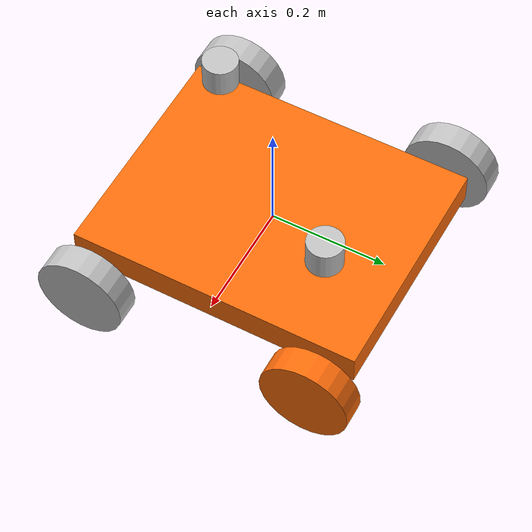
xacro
<?xml version="1.0" encoding="utf-8"?>
<robot name="ros_gazebo_control" xmlns:xacro="http://ros.org/wiki/xacro">

  <!-- 机器人基坐标系和base_link的变换 -->
  <link name="footprint"/>
  <joint name="base_joint" type="fixed">
    <parent link="footprint"/>
    <child link="base_link"/>
  </joint>

  <!-- 底盘基坐标系 -->
  <link name="base_link">
    <inertial>
    <!-- 空间坐标系，欧拉角 -->
      <origin xyz="-0.00220382717226197 -2.77555756156289E-16 -0.0265140822306779" rpy="0 0 1.5707" />
      <!-- 质量 -->
      <mass value="10.000" />
      <!-- 惯性矩阵 -->
      <inertia
        ixx="0.0572230045930851"
        ixy="-6.87004526351033E-11"
        ixz="0.000395011143970009"
        iyy="0.104579006027751"
        iyz="-1.14411298490415E-09"
        izz="0.158680615936617" />
    </inertial>
    <visual>    <!-- 可视化 -->
      <origin xyz="0 0 0" rpy="0 0 1.5707" />
      <geometry>
        <box size="0.500 0.400 0.0525"/>
      </geometry>
      <material name="orange">
        <color rgba="1.0 0.423529411765 0.0392156862745 1.0" />    <!-- 颜色设定 1代表不透明 -->
      </material>
    </visual>
    <collision>  <!-- 碰撞矩阵 -->
      <origin xyz="0 0 0" rpy="0 0 0" />
      <geometry>
        <box size="0.600 0.500 0.0525"/>
      </geometry>
    </collision>
  </link>

  <link name="laser">
    <visual>
      <origin xyz="0 0 0" />
      <geometry>
        <cylinder length="0.05" radius="0.03" />
      </geometry>
      <material name="">
        <color rgba="0.752941176470588 0.752941176470588 0.752941176470588 1" />
      </material>
    </visual>
  </link>

  <joint name="laser_joint" type="fixed">
    <parent link="base_link" />
    <child link="laser" />
    <origin rpy="0 0 0.785" xyz="0.119 0.154 0.15" />
  </joint>

  <!-- 添加第二个雷达 -->
  <link name="laser2">
    <visual>
      <origin xyz="0 0 0" />
      <geometry>
        <cylinder length="0.05" radius="0.03" />
      </geometry>
      <material name="">
        <color rgba="0.752941176470588 0.752941176470588 0.752941176470588 1" />
      </material>
    </visual>
  </link>

  <joint name="laser2_joint" type="fixed">
    <parent link="base_link" />
    <child link="laser2" />
    <origin rpy="0 0 -2.355" xyz="-0.117 -0.159 0.15" />
  </joint>

  <!-- 左前轮连接 -->
  <link name="left_front_wheel_link">
    <inertial>
      <origin xyz="-2.22044604925031E-16 5.55111512312578E-17 -0.0225" rpy="-1.5708 -0.30431 -1.5707" />
      <mass value="0.721647747903646" />    <!-- 轮子质量 -->
      <!-- 惯性矩阵 -->
      <inertia ixx="0.00123192786633422" ixy="1.89735380184963E-19" ixz="8.49404400619211E-20" iyy="0.00123192786633422" iyz="8.75533839482724E-20" izz="0.00224906487784527" />
    </inertial>
    <visual>
      <origin xyz="0 0 0" rpy="0 0 -1.5707" />
      <geometry>
        <cylinder length="0.045" radius="0.07625"/>
      </geometry>
      <material name="orange">  <!-- 颜色设定 1代表不透明 -->
        <color rgba="1.0 0.423529411765 0.0392156862745 1.0" />
      </material>
    </visual>
    <collision>
      <origin xyz="0 0 0" rpy="0 0 0" />
      <geometry>
        <cylinder length="0.045" radius="0.07625"/>
      </geometry>
    </collision>
  </link>

  <!-- 左前轮关节-->
  <joint name="left_front_wheel_joint" type="continuous">
    <origin xyz="0.25 0.20 -0.0265" rpy="-1.5708 -0.30431 -1.5707" />
    <parent link="base_link" /> <!-- 父连接点 -->
    <child link="left_front_wheel_link" />  <!-- 子连接点 -->
    <axis xyz="0 0 -1" />
  </joint>

  <!-- 右前轮连接 -->
  <link name="right_front_wheel_link">
    <inertial>
      <origin xyz="1.11022302462516E-16 1.11022302462516E-16 -0.0225" rpy="0 0 -1.5707" />
      <mass value="0.845393856790019" />
      <inertia
        ixx="0.00123192786633422"
        ixy="7.45388993583784E-20"
        ixz="1.67796661947745E-19"
        iyy="0.00123192786633422"
        iyz="-2.53495689109652E-20"
        izz="0.00224906487784527" />
    </inertial>
    <visual>
      <origin xyz="0 0 0" rpy="0 0 -1.5707" />
      <geometry>
        <cylinder length="0.045" radius="0.07625"/>
      </geometry>
      <material name="">
        <color rgba="0.752941176470588 0.752941176470588 0.752941176470588 1" />
      </material>
    </visual>
    <collision>
      <origin xyz="0 0 0" rpy="0 0 0" />
      <geometry>
        <cylinder length="0.045" radius="0.07625"/>
      </geometry>
    </collision>
  </link>

  <!-- 右前轮关节 -->
  <joint name="right_front_wheel_joint" type="continuous">
    <origin xyz="0.25 -0.20 -0.0265" rpy="-1.5708 -0.036627 -1.5707" />
    <parent link="base_link" />
    <child link="right_front_wheel_link" />
    <axis xyz="0 0 1" />
  </joint>

  <!-- 左后轮连接 -->
  <link name="left_back_wheel_link">
    <inertial>
      <origin xyz="0.000156473891360004 0.0134968603558328 -1.22002941108281E-05" rpy="0 0 -1.5707" />
      <mass value="0.845393836088844" />
      <inertia
        ixx="0.00123192786633422"
        ixy="0"
        ixz="-5.02055808133134E-20"
        iyy="0.00123192786633422"
        iyz="-1.73134637201802E-19"
        izz="0.00224906487784527" />
    </inertial>
    <visual>
      <origin xyz="0 0 0" rpy="0 0 0" />
      <geometry>
        <cylinder length="0.045" radius="0.07625"/>
      </geometry>
      <material name="">
        <color rgba="0.752941176470588 0.752941176470588 0.752941176470588 1" />
      </material>
    </visual>
    <collision>
      <origin xyz="0 0 0" rpy="0 0 -1.5707" />
      <geometry>
        <cylinder length="0.045" radius="0.07625"/>
      </geometry>
    </collision>
  </link>

  <!-- 左后轮关节 -->
  <joint name="left_back_wheel_joint" type="continuous">
    <origin xyz="-0.25 0.20 -0.0265" rpy="-1.5708 1.04 -1.5707" />
    <parent link="base_link" />
    <child link="left_back_wheel_link" />
    <axis xyz="0 0 -1" />
  </joint>

  <!-- 右后轮连接 -->
  <link name="right_back_wheel_link">
    <inertial>
      <origin xyz="-2.77555756156289E-17 1.2490009027033E-16 -0.0225" rpy="0 0 -1.5707" />
      <mass value="0.845393867160532" />
      <inertia
        ixx="0.00123192786633422"
        ixy="-5.42101086242752E-20"
        ixz="5.30406348890529E-20"
        iyy="0.00123192786633422"
        iyz="2.07409588350469E-20"
        izz="0.00224906487784527" />
    </inertial>
    <visual>
      <origin xyz="0 0 0" rpy="0 0 -1.5707" />
      <geometry>
        <cylinder length="0.045" radius="0.07625"/>
      </geometry>
      <material name="">
        <color rgba="0.752941176470588 0.752941176470588 0.752941176470588 1" />
      </material>
    </visual>
    <collision>
      <origin xyz="0 0 0" rpy="0 0 0" />
      <geometry>
        <cylinder length="0.045" radius="0.07625"/>
      </geometry>
    </collision>
  </link>
  <!-- 右后轮关节 -->
  <joint name="right_back_wheel_joint" type="continuous">
    <origin xyz="-0.25 -0.20 -0.0265" rpy="-1.5708 0.381 -1.5707" />
    <parent link="base_link" />
    <child link="right_back_wheel_link" />
    <axis xyz="0 0 1" />
  </joint>

  <!-- 底盘设定成灰色 -->
  <gazebo reference="base_link" >
    <material>Gazebo/Grey</material>
  </gazebo>
  <!-- 轮子设定为黑色 -->
  <!-- 左前轮 -->
  <gazebo reference="left_front_wheel_link" >
    <material>Gazebo/Black</material>
  </gazebo>
  <!-- 左后轮 -->
  <gazebo reference="left_back_wheel_link" >
    <material>Gazebo/Black</material>
  </gazebo>
  <!-- 右前轮 -->
  <gazebo reference="right_front_wheel_link" >
    <material>Gazebo/Black</material>
  </gazebo>
  <!-- 右后轮 -->
  <gazebo reference="right_back_wheel_link" >
    <material>Gazebo/Black</material>
  </gazebo>

</robot>
